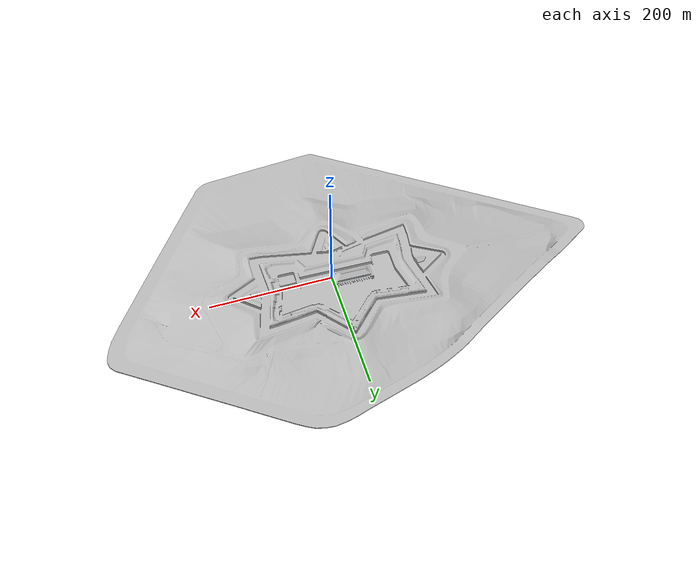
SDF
<sdf version="1.4">
 <world name="default">
  <light name="sundir" type="directional">
   <pose>0 0 10 0 -0 0</pose>
   <diffuse>1 0.95 0.8 1</diffuse>
   <specular>0.7 0.7 0.7 1</specular>
   <attenuation>
    <range>1000</range>
    <constant>0.9</constant>
    <linear>0.01</linear>
    <quadratic>0.001</quadratic>
   </attenuation>
   <direction>-0.3 0.4 -1</direction>
  </light>
  <light name="skydir1" type="directional">
   <cast_shadows>0</cast_shadows>
   <pose>10 0 10 0 -0 0</pose>
   <diffuse>0.5 0.5 0.52 1</diffuse>
   <specular>0.1 0.1 0.1 1</specular>
   <attenuation>
    <range>1000</range>
    <constant>0.9</constant>
    <linear>0.01</linear>
    <quadratic>0.001</quadratic>
   </attenuation>
   <direction>0.6 -0.4 -0.9</direction>
  </light>
  <light name="skydir2" type="directional">
   <cast_shadows>0</cast_shadows>
   <pose>20 0 10 0 -0 0</pose>
   <diffuse>0.5 0.5 0.52 1</diffuse>
   <specular>0.1 0.1 0.1 1</specular>
   <attenuation>
    <range>1000</range>
    <constant>0.9</constant>
    <linear>0.01</linear>
    <quadratic>0.001</quadratic>
   </attenuation>
   <direction>0 0.6 -0.9</direction>
  </light>
  <light name="refdir" type="directional">
   <cast_shadows>0</cast_shadows>
   <pose>30 0 10 0 -0 0</pose>
   <diffuse>0.52 0.5 0.5 1</diffuse>
   <specular>0.1 0.1 0.1 1</specular>
   <attenuation>
    <range>1000</range>
    <constant>0.9</constant>
    <linear>0.01</linear>
    <quadratic>0.001</quadratic>
   </attenuation>
   <direction>-0.6 -0.5 0.8</direction>
  </light>
  <model name="citadel">
   <pose>-291.751 -197.985 0 1.5708 -0 0</pose>
   <static>1</static>
   <link name="body">
    <collision name="collision">
     <geometry><mesh><uri>model://citadel_collision.dae</uri></mesh></geometry>
    </collision>
    <visual name="visual"><geometry><mesh><uri>model://citadel_hill.dae</uri></mesh></geometry></visual>
    <velocity_decay><linear>0</linear><angular>0</angular></velocity_decay>
    <gravity>0</gravity>
   </link>
  </model>
  <scene><ambient>0.45 0.5 0.45 1</ambient><background>0 0.7 1 1</background><shadows>1</shadows></scene>
  <physics type="ode">
   <max_step_size>0.001</max_step_size>
   <real_time_factor>1</real_time_factor>
   <real_time_update_rate>1000</real_time_update_rate>
   <gravity>0 0 -9.8</gravity>
  </physics>
 </world>
</sdf>
